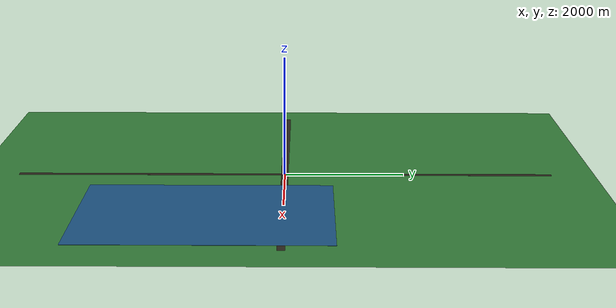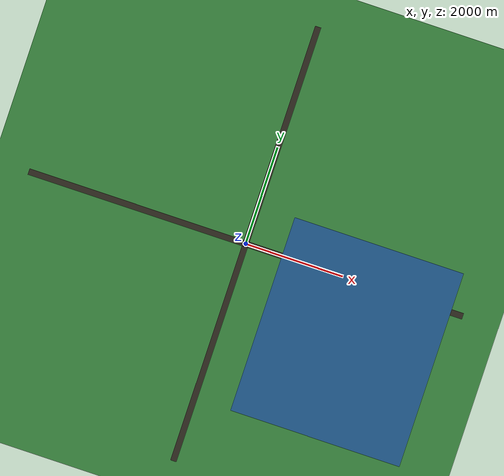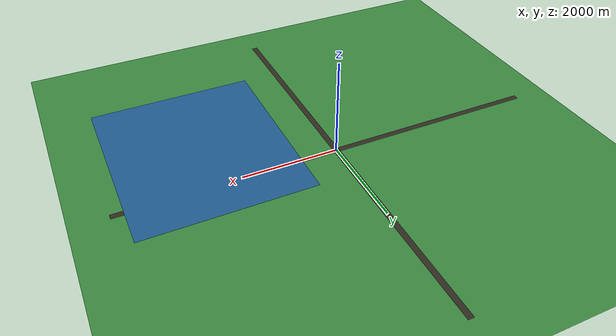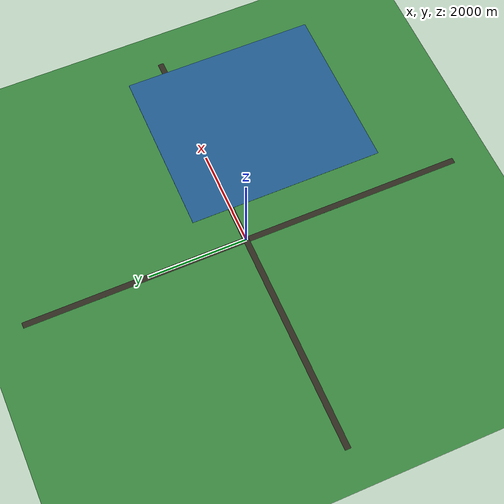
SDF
<?xml version="1.0" encoding="UTF-8"?>
<!-- Vista tipo crucero ~20 000 ft: cielo con nubes y suelo verde/azul lejano (tierra + sensación de horizonte). -->
<sdf version="1.9">
  <world name="daa_high_altitude">
    <physics type="ode">
      <max_step_size>0.004</max_step_size>
      <real_time_factor>1.0</real_time_factor>
      <real_time_update_rate>250</real_time_update_rate>
    </physics>
    <gravity>0 0 -9.8</gravity>
    <magnetic_field>6e-06 2.3e-05 -4.2e-05</magnetic_field>
    <atmosphere type="adiabatic"/>
    <scene>
      <!-- Rejilla: referencia para ver desplazamiento / paralaje sobre el suelo -->
      <grid>true</grid>
      <ambient>0.55 0.68 0.92 1</ambient>
      <background>0.35 0.55 0.85 1</background>
      <shadows>true</shadows>
      <sky>
        <clouds>
          <speed>8</speed>
        </clouds>
      </sky>
    </scene>
    <!-- Suelo amplio: lee como tierra/agua vistos desde altura; colisión para aterrizaje SITL. -->
    <model name="earth_surface">
      <static>true</static>
      <link name="link">
        <collision name="collision">
          <geometry>
            <plane>
              <normal>0 0 1</normal>
              <size>1 1</size>
            </plane>
          </geometry>
          <surface>
            <friction>
              <ode/>
            </friction>
            <bounce/>
            <contact/>
          </surface>
        </collision>
        <visual name="terrain">
          <geometry>
            <plane>
              <normal>0 0 1</normal>
              <size>8000 8000</size>
            </plane>
          </geometry>
          <material>
            <ambient>0.15 0.42 0.18 1</ambient>
            <diffuse>0.22 0.52 0.24 1</diffuse>
            <specular>0.05 0.08 0.06 1</specular>
          </material>
        </visual>
        <visual name="coastal_blue">
          <pose>2500 -1200 0.02 0 0 0</pose>
          <geometry>
            <plane>
              <normal>0 0 1</normal>
              <size>3500 4000</size>
            </plane>
          </geometry>
          <material>
            <ambient>0.08 0.22 0.42 1</ambient>
            <diffuse>0.12 0.35 0.55 1</diffuse>
            <specular>0.2 0.25 0.3 1</specular>
          </material>
        </visual>
        <pose>0 0 0 0 0 0</pose>
        <enable_wind>false</enable_wind>
      </link>
      <pose>0 0 0 0 0 0</pose>
      <self_collide>false</self_collide>
    </model>
    <!-- Cruces tipo “carretera” para notar movimiento respecto al suelo -->
    <model name="ground_markings">
      <static>true</static>
      <link name="link">
        <visual name="road_ns">
          <pose>0 0 0.08 0 0 0</pose>
          <cast_shadows>true</cast_shadows>
          <geometry>
            <box>
              <size>9000 120 0.12</size>
            </box>
          </geometry>
          <material>
            <ambient>0.12 0.1 0.08 1</ambient>
            <diffuse>0.18 0.16 0.12 1</diffuse>
          </material>
        </visual>
        <visual name="road_ew">
          <pose>0 0 0.08 0 0 0</pose>
          <cast_shadows>true</cast_shadows>
          <geometry>
            <box>
              <size>120 9000 0.12</size>
            </box>
          </geometry>
          <material>
            <ambient>0.12 0.1 0.08 1</ambient>
            <diffuse>0.18 0.16 0.12 1</diffuse>
          </material>
        </visual>
        <pose>0 0 0 0 0 0</pose>
      </link>
    </model>
    <light name="sunUTC" type="directional">
      <pose>0 0 8000 0 0 0</pose>
      <cast_shadows>true</cast_shadows>
      <intensity>1.05</intensity>
      <direction>0.15 0.2 -0.97</direction>
      <diffuse>0.95 0.95 0.92 1</diffuse>
      <specular>0.35 0.35 0.32 1</specular>
      <attenuation>
        <range>20000</range>
        <linear>0</linear>
        <constant>1</constant>
        <quadratic>0</quadratic>
      </attenuation>
    </light>
    <spherical_coordinates>
      <surface_model>EARTH_WGS84</surface_model>
      <world_frame_orientation>ENU</world_frame_orientation>
      <latitude_deg>47.397971057728974</latitude_deg>
      <longitude_deg>8.546163739800146</longitude_deg>
      <elevation>0</elevation>
    </spherical_coordinates>
  </world>
</sdf>
